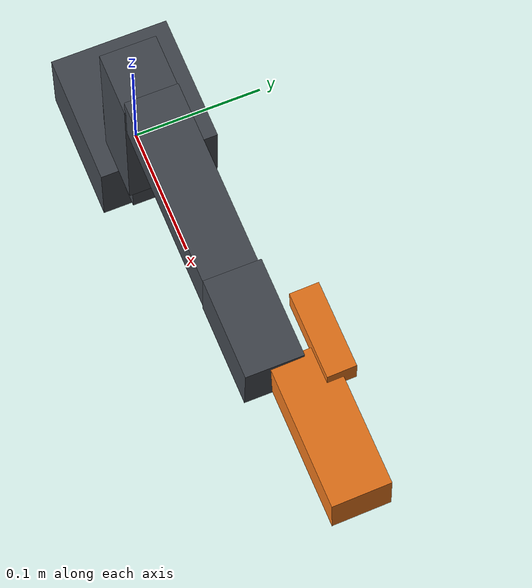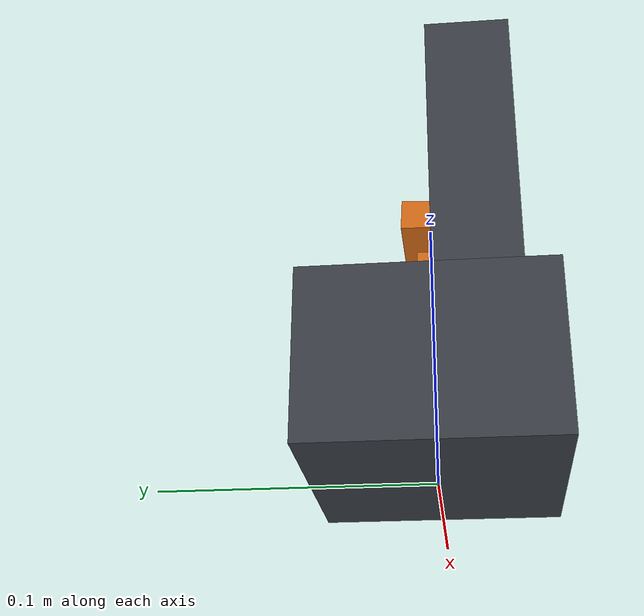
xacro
<?xml version="1.0"?>
<robot name="so101" xmlns:xacro="http://www.ros.org/wiki/xacro">

  <xacro:arg name="hardware" default="mock"/>
  <xacro:arg name="prefix" default=""/>
  <xacro:arg name="joint_commands_topic" default="/so101/joint_commands"/>
  <xacro:arg name="joint_states_topic" default="/so101/driver_joint_states"/>

  <xacro:property name="hw" value="$(arg hardware)"/>
  <xacro:property name="p" value="$(arg prefix)"/>

  <!-- Crude but honest link sizes (metres). The arm is 3D-printed PLA; masses are estimates. -->
  <xacro:property name="link_mass" value="0.10"/>

  <material name="so101_grey"><color rgba="0.25 0.27 0.30 1.0"/></material>
  <material name="so101_orange"><color rgba="0.90 0.45 0.10 1.0"/></material>

  <!-- A box link with a matching uniform-box inertia. -->
  <xacro:macro name="box_link" params="name sx sy sz mass:=0.10 ox:=0 oy:=0 oz:=0 material:=so101_grey">
    <link name="${name}">
      <visual>
        <origin xyz="${ox} ${oy} ${oz}"/>
        <geometry><box size="${sx} ${sy} ${sz}"/></geometry>
        <material name="${material}"/>
      </visual>
      <collision>
        <origin xyz="${ox} ${oy} ${oz}"/>
        <geometry><box size="${sx} ${sy} ${sz}"/></geometry>
      </collision>
      <inertial>
        <origin xyz="${ox} ${oy} ${oz}"/>
        <mass value="${mass}"/>
        <inertia ixx="${mass * (sy*sy + sz*sz) / 12.0}" ixy="0" ixz="0"
                 iyy="${mass * (sx*sx + sz*sz) / 12.0}" iyz="0"
                 izz="${mass * (sx*sx + sy*sy) / 12.0}"/>
      </inertial>
    </link>
  </xacro:macro>

  <!-- ===================== links ===================== -->
  <xacro:box_link name="${p}base_link"      sx="0.100" sy="0.090" sz="0.062" oz="0.031" mass="0.25"/>
  <xacro:box_link name="${p}shoulder_link"  sx="0.055" sy="0.055" sz="0.060"/>
  <xacro:box_link name="${p}upper_arm_link" sx="0.130" sy="0.045" sz="0.040" ox="-0.058"/>
  <xacro:box_link name="${p}lower_arm_link" sx="0.150" sy="0.040" sz="0.038" ox="-0.067"/>
  <xacro:box_link name="${p}wrist_link"     sx="0.045" sy="0.070" sz="0.040" oy="-0.030"/>
  <xacro:box_link name="${p}gripper_link"   sx="0.040" sy="0.040" sz="0.100" oz="-0.050" material="so101_orange"/>
  <xacro:box_link name="${p}moving_jaw_so101_v1_link" sx="0.020" sy="0.060" sz="0.020" oy="0.028" material="so101_orange"/>
  <link name="${p}gripper_frame_link"/>

  <joint name="${p}shoulder_pan" type="revolute">
    <parent link="${p}base_link"/>
    <child link="${p}shoulder_link"/>
    <origin xyz="0.0388353 -8.97657e-09 0.0624" rpy="3.14159 4.18253e-17 -3.14159"/>
    <axis xyz="0 0 1"/>
    <limit lower="-1.91986" upper="1.91986" effort="1.6" velocity="5.2"/>
  </joint>

  <joint name="${p}shoulder_lift" type="revolute">
    <parent link="${p}shoulder_link"/>
    <child link="${p}upper_arm_link"/>
    <origin xyz="-0.0303992 -0.0182778 -0.0542" rpy="-1.5708 -1.5708 0"/>
    <axis xyz="0 0 1"/>
    <limit lower="-1.74533" upper="1.74533" effort="1.6" velocity="5.2"/>
  </joint>

  <joint name="${p}elbow_flex" type="revolute">
    <parent link="${p}upper_arm_link"/>
    <child link="${p}lower_arm_link"/>
    <origin xyz="-0.11257 -0.028 1.73763e-16" rpy="-3.63608e-16 8.74301e-16 1.5708"/>
    <axis xyz="0 0 1"/>
    <limit lower="-1.69" upper="1.69" effort="1.6" velocity="5.2"/>
  </joint>

  <joint name="${p}wrist_flex" type="revolute">
    <parent link="${p}lower_arm_link"/>
    <child link="${p}wrist_link"/>
    <origin xyz="-0.1349 0.0052 3.62355e-17" rpy="4.02456e-15 8.67362e-16 -1.5708"/>
    <axis xyz="0 0 1"/>
    <limit lower="-1.65806" upper="1.65806" effort="1.6" velocity="5.2"/>
  </joint>

  <joint name="${p}wrist_roll" type="revolute">
    <parent link="${p}wrist_link"/>
    <child link="${p}gripper_link"/>
    <origin xyz="5.55112e-17 -0.0611 0.0181" rpy="1.5708 0.0486795 3.14159"/>
    <axis xyz="0 0 1"/>
    <limit lower="-2.74385" upper="2.84121" effort="1.6" velocity="5.2"/>
  </joint>

  <!-- The jaw is a BRANCH off gripper_link, not part of the base -> tool chain. -->
  <joint name="${p}gripper" type="revolute">
    <parent link="${p}gripper_link"/>
    <child link="${p}moving_jaw_so101_v1_link"/>
    <origin xyz="0.0202 0.0188 -0.0234" rpy="1.5708 -5.24284e-08 -1.41553e-15"/>
    <axis xyz="0 0 1"/>
    <limit lower="-0.174533" upper="1.74533" effort="1.6" velocity="5.2"/>
  </joint>

  <!-- The tool point: between the jaws, z along the approach direction. -->
  <joint name="${p}gripper_frame_joint" type="fixed">
    <parent link="${p}gripper_link"/>
    <child link="${p}gripper_frame_link"/>
    <origin xyz="-0.0079 -0.000218121 -0.0981274" rpy="0 3.14159 0"/>
  </joint>

  <!-- ===================== ros2_control ===================== -->
  <xacro:include filename="$(find so101_description)/urdf/so101.ros2_control.xacro"/>
  <xacro:so101_ros2_control
      prefix="${p}" hardware="${hw}"
      joint_commands_topic="$(arg joint_commands_topic)"
      joint_states_topic="$(arg joint_states_topic)"/>

</robot>
